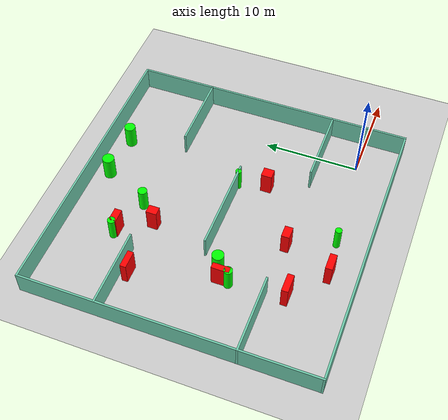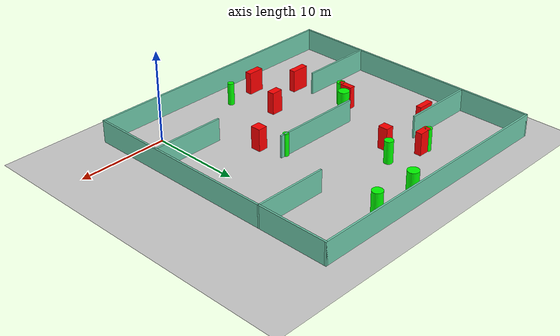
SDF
<sdf version="1.7">
 <world name="default">
  <light name="sun" type="directional">
   <pose>0 0 10 0 -0 0</pose>
   <diffuse>0.8 0.8 0.8 1</diffuse>
   <specular>0.2 0.2 0.2 1</specular>
   <attenuation>
    <range>1000</range>
    <constant>0.9</constant>
    <linear>0.01</linear>
    <quadratic>0.001</quadratic>
   </attenuation>
   <direction>-0.5 0.1 -0.9</direction>
   <spot><inner_angle>0</inner_angle><outer_angle>0</outer_angle><falloff>0</falloff></spot>
  </light>
  <model name="ground_plane">
   <static>1</static>
   <link name="link">
    <collision name="collision">
     <geometry><plane><normal>0 0 1</normal><size>100 100</size></plane></geometry>
     <surface>
      <contact><collide_bitmask>65535</collide_bitmask></contact>
      <friction><ode><mu>100</mu><mu2>50</mu2></ode></friction>
     </surface>
    </collision>
    <visual name="visual">
     <cast_shadows>0</cast_shadows>
     <geometry><plane><normal>0 0 1</normal><size>100 100</size></plane></geometry>
     <material>
      <script><uri>file://media/materials/scripts/gazebo.material</uri><name>Gazebo/Grey</name></script>
     </material>
    </visual>
   </link>
  </model>
  <gravity>0 0 -9.8</gravity>
  <magnetic_field>6e-06 2.3e-05 -4.2e-05</magnetic_field>
  <atmosphere type="adiabatic"/>
  <physics type="ode">
   <max_step_size>0.001</max_step_size>
   <real_time_factor>1</real_time_factor>
   <real_time_update_rate>1000</real_time_update_rate>
  </physics>
  <scene><ambient>0.4 0.4 0.4 1</ambient><background>0.7 0.7 0.7 1</background><shadows>1</shadows></scene>
  <spherical_coordinates>
   <surface_model>EARTH_WGS84</surface_model>
   <latitude_deg>0</latitude_deg>
   <longitude_deg>0</longitude_deg>
   <elevation>0</elevation>
   <heading_deg>0</heading_deg>
  </spherical_coordinates>
  <model name="my_base_walls">
   <link name="Wall_10">
    <collision name="Wall_10_Collision">
     <geometry><box><size>8.2 0.2 2.5</size></box></geometry>
     <pose>0 0 1.25 0 -0 0</pose>
    </collision>
    <visual name="Wall_10_Visual">
     <pose>0 0 1.25 0 -0 0</pose>
     <geometry><box><size>8.2 0.2 2.5</size></box></geometry>
     <material>
      <script><uri>file://media/materials/scripts/gazebo.material</uri><name>Gazebo/Grey</name></script>
      <ambient>0.435294 0.796078 0.67451 1</ambient>
     </material>
     <meta><layer>0</layer></meta>
    </visual>
    <pose>-11 -7 0 0 -0 0</pose>
   </link>
   <link name="Wall_12">
    <collision name="Wall_12_Collision">
     <geometry><box><size>8.2 0.2 2.5</size></box></geometry>
     <pose>0 0 1.25 0 -0 0</pose>
    </collision>
    <visual name="Wall_12_Visual">
     <pose>0 0 1.25 0 -0 0</pose>
     <geometry><box><size>8.2 0.2 2.5</size></box></geometry>
     <material>
      <script><uri>file://media/materials/scripts/gazebo.material</uri><name>Gazebo/Grey</name></script>
      <ambient>0.435294 0.796078 0.67451 1</ambient>
     </material>
     <meta><layer>0</layer></meta>
    </visual>
    <pose>-11 7 0 0 -0 0</pose>
   </link>
   <link name="Wall_14">
    <collision name="Wall_14_Collision">
     <geometry><box><size>8.2 0.2 2.5</size></box></geometry>
     <pose>0 0 1.25 0 -0 0</pose>
    </collision>
    <visual name="Wall_14_Visual">
     <pose>0 0 1.25 0 -0 0</pose>
     <geometry><box><size>8.2 0.2 2.5</size></box></geometry>
     <material>
      <script><uri>file://media/materials/scripts/gazebo.material</uri><name>Gazebo/Grey</name></script>
      <ambient>0.435294 0.796078 0.67451 1</ambient>
     </material>
     <meta><layer>0</layer></meta>
    </visual>
    <pose>11 7 0 0 -0 3.14159</pose>
   </link>
   <link name="Wall_16">
    <collision name="Wall_16_Collision">
     <geometry><box><size>10.2 0.2 2.5</size></box></geometry>
     <pose>0 0 1.25 0 -0 0</pose>
    </collision>
    <visual name="Wall_16_Visual">
     <pose>0 0 1.25 0 -0 0</pose>
     <geometry><box><size>10.2 0.2 2.5</size></box></geometry>
     <material>
      <script><uri>file://media/materials/scripts/gazebo.material</uri><name>Gazebo/Grey</name></script>
      <ambient>0.435294 0.796078 0.67451 1</ambient>
     </material>
     <meta><layer>0</layer></meta>
    </visual>
    <pose>0 0 0 0 -0 3.14159</pose>
   </link>
   <link name="Wall_2">
    <collision name="Wall_2_Collision">
     <geometry><box><size>30.2 0.2 2.5</size></box></geometry>
     <pose>0 0 1.25 0 -0 0</pose>
    </collision>
    <visual name="Wall_2_Visual">
     <pose>0 0 1.25 0 -0 0</pose>
     <geometry><box><size>30.2 0.2 2.5</size></box></geometry>
     <material>
      <script><uri>file://media/materials/scripts/gazebo.material</uri><name>Gazebo/Grey</name></script>
      <ambient>0.435294 0.796078 0.67451 1</ambient>
     </material>
     <meta><layer>0</layer></meta>
    </visual>
    <pose>0 -15 0 0 -0 3.14159</pose>
   </link>
   <link name="Wall_3">
    <collision name="Wall_3_Collision">
     <geometry><box><size>30.2 0.2 2.5</size></box></geometry>
     <pose>0 0 1.25 0 -0 0</pose>
    </collision>
    <visual name="Wall_3_Visual">
     <pose>0 0 1.25 0 -0 0</pose>
     <geometry><box><size>30.2 0.2 2.5</size></box></geometry>
     <material>
      <script><uri>file://media/materials/scripts/gazebo.material</uri><name>Gazebo/Grey</name></script>
      <ambient>0.435294 0.796078 0.67451 1</ambient>
     </material>
     <meta><layer>0</layer></meta>
    </visual>
    <pose>-15 0 0 0 -0 1.5708</pose>
   </link>
   <link name="Wall_4">
    <collision name="Wall_4_Collision">
     <geometry><box><size>30.2 0.2 2.5</size></box></geometry>
     <pose>0 0 1.25 0 -0 0</pose>
    </collision>
    <visual name="Wall_4_Visual">
     <pose>0 0 1.25 0 -0 0</pose>
     <geometry><box><size>30.2 0.2 2.5</size></box></geometry>
     <material>
      <script><uri>file://media/materials/scripts/gazebo.material</uri><name>Gazebo/Grey</name></script>
      <ambient>0.435294 0.796078 0.67451 1</ambient>
     </material>
     <meta><layer>0</layer></meta>
    </visual>
    <pose>0 15 0 0 -0 0</pose>
   </link>
   <link name="Wall_6">
    <collision name="Wall_6_Collision">
     <geometry><box><size>30.2 0.2 2.5</size></box></geometry>
     <pose>0 0 1.25 0 -0 0</pose>
    </collision>
    <visual name="Wall_6_Visual">
     <pose>0 0 1.25 0 -0 0</pose>
     <geometry><box><size>30.2 0.2 2.5</size></box></geometry>
     <material>
      <script><uri>file://media/materials/scripts/gazebo.material</uri><name>Gazebo/Grey</name></script>
      <ambient>0.435294 0.796078 0.67451 1</ambient>
     </material>
     <meta><layer>0</layer></meta>
    </visual>
    <pose>15 0 0 0 -0 1.5708</pose>
   </link>
   <link name="Wall_8">
    <collision name="Wall_8_Collision">
     <geometry><box><size>8.2 0.2 2.5</size></box></geometry>
     <pose>0 0 1.25 0 -0 0</pose>
    </collision>
    <visual name="Wall_8_Visual">
     <pose>0 0 1.25 0 -0 0</pose>
     <geometry><box><size>8.2 0.2 2.5</size></box></geometry>
     <material>
      <script><uri>file://media/materials/scripts/gazebo.material</uri><name>Gazebo/Grey</name></script>
      <ambient>0.435294 0.796078 0.67451 1</ambient>
     </material>
     <meta><layer>0</layer></meta>
    </visual>
    <pose>11 -7 0 0 -0 3.14159</pose>
   </link>
   <static>1</static>
   <pose>-11 11 0 0 -0 0</pose>
  </model>
  <model name="cylinder1">
   <static>1</static>
   <link name="link">
    <inertial>
     <mass>1</mass>
     <inertia><ixx>0.5</ixx><ixy>0</ixy><ixz>0</ixz><iyy>0.5</iyy><iyz>0</iyz><izz>1</izz></inertia>
    </inertial>
    <collision name="collision">
     <geometry><cylinder><radius>0.3465127404215363</radius><length>2.5</length></cylinder></geometry>
    </collision>
    <visual name="visual">
     <geometry><cylinder><radius>0.3465127404215363</radius><length>2.5</length></cylinder></geometry>
     <material>
      <ambient>0 1 0 1</ambient>
      <diffuse>0 1 0 1</diffuse>
      <specular>0.1 0.1 0.1 1</specular>
      <emissive>0 0 0 0</emissive>
     </material>
    </visual>
   </link>
   <pose>-10.28427370899199 -0.7547001341653621 1.25 0 0 0</pose>
  </model>
  <model name="cylinder2">
   <static>1</static>
   <link name="link">
    <inertial>
     <mass>1</mass>
     <inertia><ixx>0.5</ixx><ixy>0</ixy><ixz>0</ixz><iyy>0.5</iyy><iyz>0</iyz><izz>1</izz></inertia>
    </inertial>
    <collision name="collision">
     <geometry><cylinder><radius>0.4789643989052442</radius><length>2.5</length></cylinder></geometry>
    </collision>
    <visual name="visual">
     <geometry><cylinder><radius>0.4789643989052442</radius><length>2.5</length></cylinder></geometry>
     <material>
      <ambient>0 1 0 1</ambient>
      <diffuse>0 1 0 1</diffuse>
      <specular>0.1 0.1 0.1 1</specular>
      <emissive>0 0 0 0</emissive>
     </material>
    </visual>
   </link>
   <pose>-12.53953181979811 19.1769860865181 1.25 0 0 0</pose>
  </model>
  <model name="cylinder3">
   <static>1</static>
   <link name="link">
    <inertial>
     <mass>1</mass>
     <inertia><ixx>0.5</ixx><ixy>0</ixy><ixz>0</ixz><iyy>0.5</iyy><iyz>0</iyz><izz>1</izz></inertia>
    </inertial>
    <collision name="collision">
     <geometry><cylinder><radius>0.5837597379539348</radius><length>2.5</length></cylinder></geometry>
    </collision>
    <visual name="visual">
     <geometry><cylinder><radius>0.5837597379539348</radius><length>2.5</length></cylinder></geometry>
     <material>
      <ambient>0 1 0 1</ambient>
      <diffuse>0 1 0 1</diffuse>
      <specular>0.1 0.1 0.1 1</specular>
      <emissive>0 0 0 0</emissive>
     </material>
    </visual>
   </link>
   <pose>-4.917250191382795 24.09331531617268 1.25 0 0 0</pose>
  </model>
  <model name="cylinder4">
   <static>1</static>
   <link name="link">
    <inertial>
     <mass>1</mass>
     <inertia><ixx>0.5</ixx><ixy>0</ixy><ixz>0</ixz><iyy>0.5</iyy><iyz>0</iyz><izz>1</izz></inertia>
    </inertial>
    <collision name="collision">
     <geometry><cylinder><radius>0.6138902452496993</radius><length>2.5</length></cylinder></geometry>
    </collision>
    <visual name="visual">
     <geometry><cylinder><radius>0.6138902452496993</radius><length>2.5</length></cylinder></geometry>
     <material>
      <ambient>0 1 0 1</ambient>
      <diffuse>0 1 0 1</diffuse>
      <specular>0.1 0.1 0.1 1</specular>
      <emissive>0 0 0 0</emissive>
     </material>
    </visual>
   </link>
   <pose>-17.189041071711024 9.20627209763772 1.25 0 0 0</pose>
  </model>
  <model name="cylinder5">
   <static>1</static>
   <link name="link">
    <inertial>
     <mass>1</mass>
     <inertia><ixx>0.5</ixx><ixy>0</ixy><ixz>0</ixz><iyy>0.5</iyy><iyz>0</iyz><izz>1</izz></inertia>
    </inertial>
    <collision name="collision">
     <geometry><cylinder><radius>0.44875526507054736</radius><length>2.5</length></cylinder></geometry>
    </collision>
    <visual name="visual">
     <geometry><cylinder><radius>0.44875526507054736</radius><length>2.5</length></cylinder></geometry>
     <material>
      <ambient>0 1 0 1</ambient>
      <diffuse>0 1 0 1</diffuse>
      <specular>0.1 0.1 0.1 1</specular>
      <emissive>0 0 0 0</emissive>
     </material>
    </visual>
   </link>
   <pose>-18.480571832553814 7.680760703011707 1.25 0 0 0</pose>
  </model>
  <model name="cylinder6">
   <static>1</static>
   <link name="link">
    <inertial>
     <mass>1</mass>
     <inertia><ixx>0.5</ixx><ixy>0</ixy><ixz>0</ixz><iyy>0.5</iyy><iyz>0</iyz><izz>1</izz></inertia>
    </inertial>
    <collision name="collision">
     <geometry><cylinder><radius>0.3137716531663081</radius><length>2.5</length></cylinder></geometry>
    </collision>
    <visual name="visual">
     <geometry><cylinder><radius>0.3137716531663081</radius><length>2.5</length></cylinder></geometry>
     <material>
      <ambient>0 1 0 1</ambient>
      <diffuse>0 1 0 1</diffuse>
      <specular>0.1 0.1 0.1 1</specular>
      <emissive>0 0 0 0</emissive>
     </material>
    </visual>
   </link>
   <pose>-6.617535855707576 10.988630152250272 1.25 0 0 0</pose>
  </model>
  <model name="cylinder7">
   <static>1</static>
   <link name="link">
    <inertial>
     <mass>1</mass>
     <inertia><ixx>0.5</ixx><ixy>0</ixy><ixz>0</ixz><iyy>0.5</iyy><iyz>0</iyz><izz>1</izz></inertia>
    </inertial>
    <collision name="collision">
     <geometry><cylinder><radius>0.4007034525111736</radius><length>2.5</length></cylinder></geometry>
    </collision>
    <visual name="visual">
     <geometry><cylinder><radius>0.4007034525111736</radius><length>2.5</length></cylinder></geometry>
     <material>
      <ambient>0 1 0 1</ambient>
      <diffuse>0 1 0 1</diffuse>
      <specular>0.1 0.1 0.1 1</specular>
      <emissive>0 0 0 0</emissive>
     </material>
    </visual>
   </link>
   <pose>-17.020916179478807 20.506410991232016 1.25 0 0 0</pose>
  </model>
  <model name="cylinder8">
   <static>1</static>
   <link name="link">
    <inertial>
     <mass>1</mass>
     <inertia><ixx>0.5</ixx><ixy>0</ixy><ixz>0</ixz><iyy>0.5</iyy><iyz>0</iyz><izz>1</izz></inertia>
    </inertial>
    <collision name="collision">
     <geometry><cylinder><radius>0.6261242702288667</radius><length>2.5</length></cylinder></geometry>
    </collision>
    <visual name="visual">
     <geometry><cylinder><radius>0.6261242702288667</radius><length>2.5</length></cylinder></geometry>
     <material>
      <ambient>0 1 0 1</ambient>
      <diffuse>0 1 0 1</diffuse>
      <specular>0.1 0.1 0.1 1</specular>
      <emissive>0 0 0 0</emissive>
     </material>
    </visual>
   </link>
   <pose>-9.81955168259288 24.3107817629395 1.25 0 0 0</pose>
  </model>
  <model name="box1">
   <static>1</static>
   <link name="link">
    <inertial>
     <mass>1</mass>
     <inertia><ixx>0.083</ixx><ixy>0</ixy><ixz>0</ixz><iyy>0.083</iyy><iyz>0</iyz><izz>0.083</izz></inertia>
    </inertial>
    <collision name="collision">
     <geometry><box><size>0.922060386179844 1.1049282450865014 2.5</size></box></geometry>
    </collision>
    <visual name="visual">
     <geometry><box><size>0.922060386179844 1.1049282450865014 2.5</size></box></geometry>
     <material>
      <ambient>1 0 0 1</ambient>
      <diffuse>1 0 0 1</diffuse>
      <specular>0.1 0.1 0.1 1</specular>
      <emissive>0 0 0 0</emissive>
     </material>
    </visual>
    <sensor name="my_contact" type="contact">
     <contact><collision>box_collision</collision><topic>__default_topic__</topic></contact>
    </sensor>
   </link>
   <pose>-14.414438187878602 17.20890638045807 1.25 0 0 0</pose>
  </model>
  <model name="box2">
   <static>1</static>
   <link name="link">
    <inertial>
     <mass>1</mass>
     <inertia><ixx>0.083</ixx><ixy>0</ixy><ixz>0</ixz><iyy>0.083</iyy><iyz>0</iyz><izz>0.083</izz></inertia>
    </inertial>
    <collision name="collision">
     <geometry><box><size>1.523188907104284 0.7529142580642552 2.5</size></box></geometry>
    </collision>
    <visual name="visual">
     <geometry><box><size>1.523188907104284 0.7529142580642552 2.5</size></box></geometry>
     <material>
      <ambient>1 0 0 1</ambient>
      <diffuse>1 0 0 1</diffuse>
      <specular>0.1 0.1 0.1 1</specular>
      <emissive>0 0 0 0</emissive>
     </material>
    </visual>
    <sensor name="my_contact" type="contact">
     <contact><collision>box_collision</collision><topic>__default_topic__</topic></contact>
    </sensor>
   </link>
   <pose>-16.33924584138409 20.411286360380927 1.25 0 0 0</pose>
  </model>
  <model name="box3">
   <static>1</static>
   <link name="link">
    <inertial>
     <mass>1</mass>
     <inertia><ixx>0.083</ixx><ixy>0</ixy><ixz>0</ixz><iyy>0.083</iyy><iyz>0</iyz><izz>0.083</izz></inertia>
    </inertial>
    <collision name="collision">
     <geometry><box><size>1.057599612734096 1.1265477170573641 2.5</size></box></geometry>
    </collision>
    <visual name="visual">
     <geometry><box><size>1.057599612734096 1.1265477170573641 2.5</size></box></geometry>
     <material>
      <ambient>1 0 0 1</ambient>
      <diffuse>1 0 0 1</diffuse>
      <specular>0.1 0.1 0.1 1</specular>
      <emissive>0 0 0 0</emissive>
     </material>
    </visual>
    <sensor name="my_contact" type="contact">
     <contact><collision>box_collision</collision><topic>__default_topic__</topic></contact>
    </sensor>
   </link>
   <pose>-5.772543145118284 8.092299346460493 1.25 0 0 0</pose>
  </model>
  <model name="box4">
   <static>1</static>
   <link name="link">
    <inertial>
     <mass>1</mass>
     <inertia><ixx>0.083</ixx><ixy>0</ixy><ixz>0</ixz><iyy>0.083</iyy><iyz>0</iyz><izz>0.083</izz></inertia>
    </inertial>
    <collision name="collision">
     <geometry><box><size>1.9864568465896129 0.6780257670242995 2.5</size></box></geometry>
    </collision>
    <visual name="visual">
     <geometry><box><size>1.9864568465896129 0.6780257670242995 2.5</size></box></geometry>
     <material>
      <ambient>1 0 0 1</ambient>
      <diffuse>1 0 0 1</diffuse>
      <specular>0.1 0.1 0.1 1</specular>
      <emissive>0 0 0 0</emissive>
     </material>
    </visual>
    <sensor name="my_contact" type="contact">
     <contact><collision>box_collision</collision><topic>__default_topic__</topic></contact>
    </sensor>
   </link>
   <pose>-17.810160108767242 1.9953973096372426 1.25 0 0 0</pose>
  </model>
  <model name="box5">
   <static>1</static>
   <link name="link">
    <inertial>
     <mass>1</mass>
     <inertia><ixx>0.083</ixx><ixy>0</ixy><ixz>0</ixz><iyy>0.083</iyy><iyz>0</iyz><izz>0.083</izz></inertia>
    </inertial>
    <collision name="collision">
     <geometry><box><size>1.7968114498061183 0.7102075032802779 2.5</size></box></geometry>
    </collision>
    <visual name="visual">
     <geometry><box><size>1.7968114498061183 0.7102075032802779 2.5</size></box></geometry>
     <material>
      <ambient>1 0 0 1</ambient>
      <diffuse>1 0 0 1</diffuse>
      <specular>0.1 0.1 0.1 1</specular>
      <emissive>0 0 0 0</emissive>
     </material>
    </visual>
    <sensor name="my_contact" type="contact">
     <contact><collision>box_collision</collision><topic>__default_topic__</topic></contact>
    </sensor>
   </link>
   <pose>-14.078715218692004 -1.111699489955344 1.25 0 0 0</pose>
  </model>
  <model name="box6">
   <static>1</static>
   <link name="link">
    <inertial>
     <mass>1</mass>
     <inertia><ixx>0.083</ixx><ixy>0</ixy><ixz>0</ixz><iyy>0.083</iyy><iyz>0</iyz><izz>0.083</izz></inertia>
    </inertial>
    <collision name="collision">
     <geometry><box><size>1.3028679157819054 0.8306521966636101 2.5</size></box></geometry>
    </collision>
    <visual name="visual">
     <geometry><box><size>1.3028679157819054 0.8306521966636101 2.5</size></box></geometry>
     <material>
      <ambient>1 0 0 1</ambient>
      <diffuse>1 0 0 1</diffuse>
      <specular>0.1 0.1 0.1 1</specular>
      <emissive>0 0 0 0</emissive>
     </material>
    </visual>
    <sensor name="my_contact" type="contact">
     <contact><collision>box_collision</collision><topic>__default_topic__</topic></contact>
    </sensor>
   </link>
   <pose>-12.255019970941635 3.877339949225979 1.25 0 0 0</pose>
  </model>
  <model name="box7">
   <static>1</static>
   <link name="link">
    <inertial>
     <mass>1</mass>
     <inertia><ixx>0.083</ixx><ixy>0</ixy><ixz>0</ixz><iyy>0.083</iyy><iyz>0</iyz><izz>0.083</izz></inertia>
    </inertial>
    <collision name="collision">
     <geometry><box><size>0.6251820020395027 1.8013231569196946 2.5</size></box></geometry>
    </collision>
    <visual name="visual">
     <geometry><box><size>0.6251820020395027 1.8013231569196946 2.5</size></box></geometry>
     <material>
      <ambient>1 0 0 1</ambient>
      <diffuse>1 0 0 1</diffuse>
      <specular>0.1 0.1 0.1 1</specular>
      <emissive>0 0 0 0</emissive>
     </material>
    </visual>
    <sensor name="my_contact" type="contact">
     <contact><collision>box_collision</collision><topic>__default_topic__</topic></contact>
    </sensor>
   </link>
   <pose>-18.440549781453527 8.433407140955252 1.25 0 0 0</pose>
  </model>
  <model name="box8">
   <static>1</static>
   <link name="link">
    <inertial>
     <mass>1</mass>
     <inertia><ixx>0.083</ixx><ixy>0</ixy><ixz>0</ixz><iyy>0.083</iyy><iyz>0</iyz><izz>0.083</izz></inertia>
    </inertial>
    <collision name="collision">
     <geometry><box><size>1.8578591838942835 0.6158700893883263 2.5</size></box></geometry>
    </collision>
    <visual name="visual">
     <geometry><box><size>1.8578591838942835 0.6158700893883263 2.5</size></box></geometry>
     <material>
      <ambient>1 0 0 1</ambient>
      <diffuse>1 0 0 1</diffuse>
      <specular>0.1 0.1 0.1 1</specular>
      <emissive>0 0 0 0</emissive>
     </material>
    </visual>
    <sensor name="my_contact" type="contact">
     <contact><collision>box_collision</collision><topic>__default_topic__</topic></contact>
    </sensor>
   </link>
   <pose>-20.701221387111758 17.122420293799966 1.25 0 0 0</pose>
  </model>
 </world>
</sdf>
